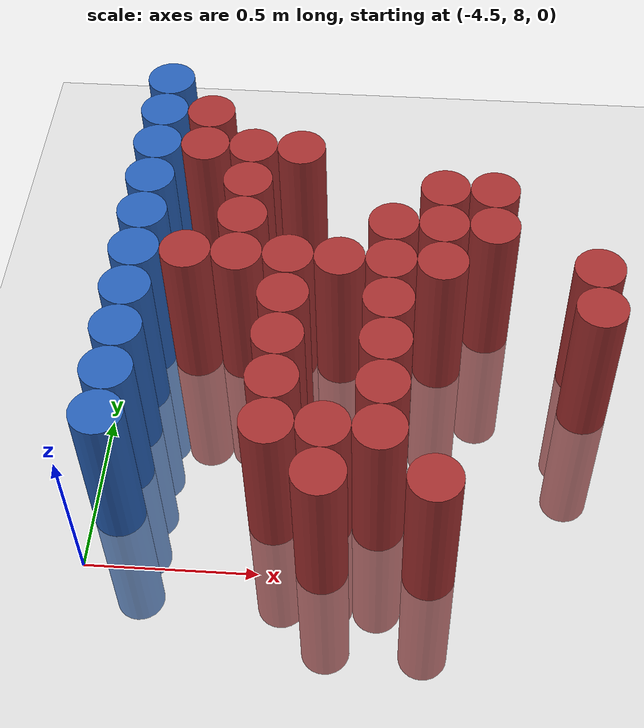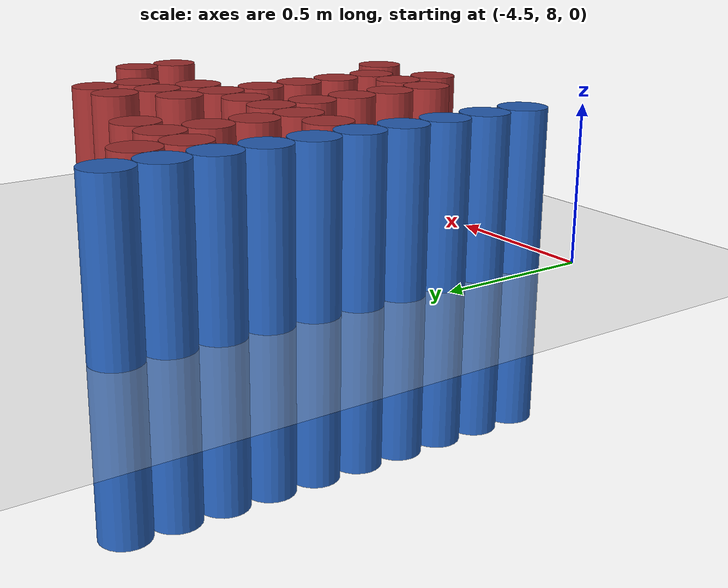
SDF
<sdf version="1.6">
 <world name="default">
  <model name="ground_plane">
   <static>1</static>
   <link name="link">
    <collision name="collision">
     <geometry><plane><normal>0 0 1</normal><size>100 100</size></plane></geometry>
     <surface><friction><ode><mu>100</mu><mu2>50</mu2></ode></friction></surface>
    </collision>
    <visual name="visual">
     <cast_shadows>0</cast_shadows>
     <geometry><plane><normal>0 0 1</normal><size>100 100</size></plane></geometry>
     <material>
      <script><uri>file://media/materials/scripts/gazebo.material</uri><name>Gazebo/Grey</name></script>
     </material>
    </visual>
   </link>
  </model>
  <model name="unit_cylinder_116">
   <static>1</static>
   <pose>-4.425000 8.175000 0.000000 0.000000 0.000000 0.000000</pose>
   <link name="link">
    <inertial>
     <mass>1</mass>
     <inertia><ixx>0.145833</ixx><ixy>0</ixy><ixz>0</ixz><iyy>0.145833</iyy><iyz>0</iyz><izz>0.125</izz></inertia>
    </inertial>
    <collision name="collision">
     <geometry><cylinder><radius>0.075000</radius><length>1</length></cylinder></geometry>
    </collision>
    <visual name="visual">
     <geometry><cylinder><radius>0.075000</radius><length>1</length></cylinder></geometry>
     <material>
      <ambient>0.152000 0.379000 0.720000 1</ambient>
      <diffuse>0.152000 0.379000 0.720000 1</diffuse>
     </material>
     <material>
      <script><name>Gazebo/Grey</name><uri>file://media/materials/scripts/gazebo.material</uri></script>
     </material>
    </visual>
    <sensor name="sensor_contact" type="contact"><contact><collision>collision</collision></contact></sensor>
   </link>
   <plugin filename="gz-sim-touchplugin-system" name="gz::sim::systems::TouchPlugin">
    <target>robot</target>
    <namespace>robot</namespace>
    <time>0.001</time>
    <enabled>true</enabled>
   </plugin>
  </model>
  <model name="unit_cylinder_117">
   <static>1</static>
   <pose>-4.425000 8.325000 0.000000 0.000000 0.000000 0.000000</pose>
   <link name="link">
    <inertial>
     <mass>1</mass>
     <inertia><ixx>0.145833</ixx><ixy>0</ixy><ixz>0</ixz><iyy>0.145833</iyy><iyz>0</iyz><izz>0.125</izz></inertia>
    </inertial>
    <collision name="collision">
     <geometry><cylinder><radius>0.075000</radius><length>1</length></cylinder></geometry>
    </collision>
    <visual name="visual">
     <geometry><cylinder><radius>0.075000</radius><length>1</length></cylinder></geometry>
     <material>
      <ambient>0.152000 0.379000 0.720000 1</ambient>
      <diffuse>0.152000 0.379000 0.720000 1</diffuse>
     </material>
     <material>
      <script><name>Gazebo/Grey</name><uri>file://media/materials/scripts/gazebo.material</uri></script>
     </material>
    </visual>
    <sensor name="sensor_contact" type="contact"><contact><collision>collision</collision></contact></sensor>
   </link>
   <plugin filename="gz-sim-touchplugin-system" name="gz::sim::systems::TouchPlugin">
    <target>robot</target>
    <namespace>robot</namespace>
    <time>0.001</time>
    <enabled>true</enabled>
   </plugin>
  </model>
  <model name="unit_cylinder_118">
   <static>1</static>
   <pose>-4.425000 8.475000 0.000000 0.000000 0.000000 0.000000</pose>
   <link name="link">
    <inertial>
     <mass>1</mass>
     <inertia><ixx>0.145833</ixx><ixy>0</ixy><ixz>0</ixz><iyy>0.145833</iyy><iyz>0</iyz><izz>0.125</izz></inertia>
    </inertial>
    <collision name="collision">
     <geometry><cylinder><radius>0.075000</radius><length>1</length></cylinder></geometry>
    </collision>
    <visual name="visual">
     <geometry><cylinder><radius>0.075000</radius><length>1</length></cylinder></geometry>
     <material>
      <ambient>0.152000 0.379000 0.720000 1</ambient>
      <diffuse>0.152000 0.379000 0.720000 1</diffuse>
     </material>
     <material>
      <script><name>Gazebo/Grey</name><uri>file://media/materials/scripts/gazebo.material</uri></script>
     </material>
    </visual>
    <sensor name="sensor_contact" type="contact"><contact><collision>collision</collision></contact></sensor>
   </link>
   <plugin filename="gz-sim-touchplugin-system" name="gz::sim::systems::TouchPlugin">
    <target>robot</target>
    <namespace>robot</namespace>
    <time>0.001</time>
    <enabled>true</enabled>
   </plugin>
  </model>
  <model name="unit_cylinder_119">
   <static>1</static>
   <pose>-4.425000 8.625000 0.000000 0.000000 0.000000 0.000000</pose>
   <link name="link">
    <inertial>
     <mass>1</mass>
     <inertia><ixx>0.145833</ixx><ixy>0</ixy><ixz>0</ixz><iyy>0.145833</iyy><iyz>0</iyz><izz>0.125</izz></inertia>
    </inertial>
    <collision name="collision">
     <geometry><cylinder><radius>0.075000</radius><length>1</length></cylinder></geometry>
    </collision>
    <visual name="visual">
     <geometry><cylinder><radius>0.075000</radius><length>1</length></cylinder></geometry>
     <material>
      <ambient>0.152000 0.379000 0.720000 1</ambient>
      <diffuse>0.152000 0.379000 0.720000 1</diffuse>
     </material>
     <material>
      <script><name>Gazebo/Grey</name><uri>file://media/materials/scripts/gazebo.material</uri></script>
     </material>
    </visual>
    <sensor name="sensor_contact" type="contact"><contact><collision>collision</collision></contact></sensor>
   </link>
   <plugin filename="gz-sim-touchplugin-system" name="gz::sim::systems::TouchPlugin">
    <target>robot</target>
    <namespace>robot</namespace>
    <time>0.001</time>
    <enabled>true</enabled>
   </plugin>
  </model>
  <model name="unit_cylinder_120">
   <static>1</static>
   <pose>-4.425000 8.775000 0.000000 0.000000 0.000000 0.000000</pose>
   <link name="link">
    <inertial>
     <mass>1</mass>
     <inertia><ixx>0.145833</ixx><ixy>0</ixy><ixz>0</ixz><iyy>0.145833</iyy><iyz>0</iyz><izz>0.125</izz></inertia>
    </inertial>
    <collision name="collision">
     <geometry><cylinder><radius>0.075000</radius><length>1</length></cylinder></geometry>
    </collision>
    <visual name="visual">
     <geometry><cylinder><radius>0.075000</radius><length>1</length></cylinder></geometry>
     <material>
      <ambient>0.152000 0.379000 0.720000 1</ambient>
      <diffuse>0.152000 0.379000 0.720000 1</diffuse>
     </material>
     <material>
      <script><name>Gazebo/Grey</name><uri>file://media/materials/scripts/gazebo.material</uri></script>
     </material>
    </visual>
    <sensor name="sensor_contact" type="contact"><contact><collision>collision</collision></contact></sensor>
   </link>
   <plugin filename="gz-sim-touchplugin-system" name="gz::sim::systems::TouchPlugin">
    <target>robot</target>
    <namespace>robot</namespace>
    <time>0.001</time>
    <enabled>true</enabled>
   </plugin>
  </model>
  <model name="unit_cylinder_121">
   <static>1</static>
   <pose>-4.425000 8.925000 0.000000 0.000000 0.000000 0.000000</pose>
   <link name="link">
    <inertial>
     <mass>1</mass>
     <inertia><ixx>0.145833</ixx><ixy>0</ixy><ixz>0</ixz><iyy>0.145833</iyy><iyz>0</iyz><izz>0.125</izz></inertia>
    </inertial>
    <collision name="collision">
     <geometry><cylinder><radius>0.075000</radius><length>1</length></cylinder></geometry>
    </collision>
    <visual name="visual">
     <geometry><cylinder><radius>0.075000</radius><length>1</length></cylinder></geometry>
     <material>
      <ambient>0.152000 0.379000 0.720000 1</ambient>
      <diffuse>0.152000 0.379000 0.720000 1</diffuse>
     </material>
     <material>
      <script><name>Gazebo/Grey</name><uri>file://media/materials/scripts/gazebo.material</uri></script>
     </material>
    </visual>
    <sensor name="sensor_contact" type="contact"><contact><collision>collision</collision></contact></sensor>
   </link>
   <plugin filename="gz-sim-touchplugin-system" name="gz::sim::systems::TouchPlugin">
    <target>robot</target>
    <namespace>robot</namespace>
    <time>0.001</time>
    <enabled>true</enabled>
   </plugin>
  </model>
  <model name="unit_cylinder_122">
   <static>1</static>
   <pose>-4.425000 9.075000 0.000000 0.000000 0.000000 0.000000</pose>
   <link name="link">
    <inertial>
     <mass>1</mass>
     <inertia><ixx>0.145833</ixx><ixy>0</ixy><ixz>0</ixz><iyy>0.145833</iyy><iyz>0</iyz><izz>0.125</izz></inertia>
    </inertial>
    <collision name="collision">
     <geometry><cylinder><radius>0.075000</radius><length>1</length></cylinder></geometry>
    </collision>
    <visual name="visual">
     <geometry><cylinder><radius>0.075000</radius><length>1</length></cylinder></geometry>
     <material>
      <ambient>0.152000 0.379000 0.720000 1</ambient>
      <diffuse>0.152000 0.379000 0.720000 1</diffuse>
     </material>
     <material>
      <script><name>Gazebo/Grey</name><uri>file://media/materials/scripts/gazebo.material</uri></script>
     </material>
    </visual>
    <sensor name="sensor_contact" type="contact"><contact><collision>collision</collision></contact></sensor>
   </link>
   <plugin filename="gz-sim-touchplugin-system" name="gz::sim::systems::TouchPlugin">
    <target>robot</target>
    <namespace>robot</namespace>
    <time>0.001</time>
    <enabled>true</enabled>
   </plugin>
  </model>
  <model name="unit_cylinder_123">
   <static>1</static>
   <pose>-4.425000 9.225000 0.000000 0.000000 0.000000 0.000000</pose>
   <link name="link">
    <inertial>
     <mass>1</mass>
     <inertia><ixx>0.145833</ixx><ixy>0</ixy><ixz>0</ixz><iyy>0.145833</iyy><iyz>0</iyz><izz>0.125</izz></inertia>
    </inertial>
    <collision name="collision">
     <geometry><cylinder><radius>0.075000</radius><length>1</length></cylinder></geometry>
    </collision>
    <visual name="visual">
     <geometry><cylinder><radius>0.075000</radius><length>1</length></cylinder></geometry>
     <material>
      <ambient>0.152000 0.379000 0.720000 1</ambient>
      <diffuse>0.152000 0.379000 0.720000 1</diffuse>
     </material>
     <material>
      <script><name>Gazebo/Grey</name><uri>file://media/materials/scripts/gazebo.material</uri></script>
     </material>
    </visual>
    <sensor name="sensor_contact" type="contact"><contact><collision>collision</collision></contact></sensor>
   </link>
   <plugin filename="gz-sim-touchplugin-system" name="gz::sim::systems::TouchPlugin">
    <target>robot</target>
    <namespace>robot</namespace>
    <time>0.001</time>
    <enabled>true</enabled>
   </plugin>
  </model>
  <model name="unit_cylinder_124">
   <static>1</static>
   <pose>-4.425000 9.375000 0.000000 0.000000 0.000000 0.000000</pose>
   <link name="link">
    <inertial>
     <mass>1</mass>
     <inertia><ixx>0.145833</ixx><ixy>0</ixy><ixz>0</ixz><iyy>0.145833</iyy><iyz>0</iyz><izz>0.125</izz></inertia>
    </inertial>
    <collision name="collision">
     <geometry><cylinder><radius>0.075000</radius><length>1</length></cylinder></geometry>
    </collision>
    <visual name="visual">
     <geometry><cylinder><radius>0.075000</radius><length>1</length></cylinder></geometry>
     <material>
      <ambient>0.152000 0.379000 0.720000 1</ambient>
      <diffuse>0.152000 0.379000 0.720000 1</diffuse>
     </material>
     <material>
      <script><name>Gazebo/Grey</name><uri>file://media/materials/scripts/gazebo.material</uri></script>
     </material>
    </visual>
    <sensor name="sensor_contact" type="contact"><contact><collision>collision</collision></contact></sensor>
   </link>
   <plugin filename="gz-sim-touchplugin-system" name="gz::sim::systems::TouchPlugin">
    <target>robot</target>
    <namespace>robot</namespace>
    <time>0.001</time>
    <enabled>true</enabled>
   </plugin>
  </model>
  <model name="unit_cylinder_125">
   <static>1</static>
   <pose>-4.425000 9.525000 0.000000 0.000000 0.000000 0.000000</pose>
   <link name="link">
    <inertial>
     <mass>1</mass>
     <inertia><ixx>0.145833</ixx><ixy>0</ixy><ixz>0</ixz><iyy>0.145833</iyy><iyz>0</iyz><izz>0.125</izz></inertia>
    </inertial>
    <collision name="collision">
     <geometry><cylinder><radius>0.075000</radius><length>1</length></cylinder></geometry>
    </collision>
    <visual name="visual">
     <geometry><cylinder><radius>0.075000</radius><length>1</length></cylinder></geometry>
     <material>
      <ambient>0.152000 0.379000 0.720000 1</ambient>
      <diffuse>0.152000 0.379000 0.720000 1</diffuse>
     </material>
     <material>
      <script><name>Gazebo/Grey</name><uri>file://media/materials/scripts/gazebo.material</uri></script>
     </material>
    </visual>
    <sensor name="sensor_contact" type="contact"><contact><collision>collision</collision></contact></sensor>
   </link>
   <plugin filename="gz-sim-touchplugin-system" name="gz::sim::systems::TouchPlugin">
    <target>robot</target>
    <namespace>robot</namespace>
    <time>0.001</time>
    <enabled>true</enabled>
   </plugin>
  </model>
  <model name="unit_cylinder_135">
   <static>1</static>
   <pose>-4.275000 8.775000 0.000000 0.000000 0.000000 0.000000</pose>
   <link name="link">
    <inertial>
     <mass>1</mass>
     <inertia><ixx>0.145833</ixx><ixy>0</ixy><ixz>0</ixz><iyy>0.145833</iyy><iyz>0</iyz><izz>0.125</izz></inertia>
    </inertial>
    <collision name="collision">
     <geometry><cylinder><radius>0.075000</radius><length>1</length></cylinder></geometry>
    </collision>
    <visual name="visual">
     <geometry><cylinder><radius>0.075000</radius><length>1</length></cylinder></geometry>
     <material>
      <ambient>0.648000 0.192000 0.192000 1</ambient>
      <diffuse>0.648000 0.192000 0.192000 1</diffuse>
     </material>
     <material>
      <script><name>Gazebo/Grey</name><uri>file://media/materials/scripts/gazebo.material</uri></script>
     </material>
    </visual>
    <sensor name="sensor_contact" type="contact"><contact><collision>collision</collision></contact></sensor>
   </link>
   <plugin filename="gz-sim-touchplugin-system" name="gz::sim::systems::TouchPlugin">
    <target>robot</target>
    <namespace>robot</namespace>
    <time>0.001</time>
    <enabled>true</enabled>
   </plugin>
  </model>
  <model name="unit_cylinder_136">
   <static>1</static>
   <pose>-4.275000 9.225000 0.000000 0.000000 0.000000 0.000000</pose>
   <link name="link">
    <inertial>
     <mass>1</mass>
     <inertia><ixx>0.145833</ixx><ixy>0</ixy><ixz>0</ixz><iyy>0.145833</iyy><iyz>0</iyz><izz>0.125</izz></inertia>
    </inertial>
    <collision name="collision">
     <geometry><cylinder><radius>0.075000</radius><length>1</length></cylinder></geometry>
    </collision>
    <visual name="visual">
     <geometry><cylinder><radius>0.075000</radius><length>1</length></cylinder></geometry>
     <material>
      <ambient>0.648000 0.192000 0.192000 1</ambient>
      <diffuse>0.648000 0.192000 0.192000 1</diffuse>
     </material>
     <material>
      <script><name>Gazebo/Grey</name><uri>file://media/materials/scripts/gazebo.material</uri></script>
     </material>
    </visual>
    <sensor name="sensor_contact" type="contact"><contact><collision>collision</collision></contact></sensor>
   </link>
   <plugin filename="gz-sim-touchplugin-system" name="gz::sim::systems::TouchPlugin">
    <target>robot</target>
    <namespace>robot</namespace>
    <time>0.001</time>
    <enabled>true</enabled>
   </plugin>
  </model>
  <model name="unit_cylinder_137">
   <static>1</static>
   <pose>-4.275000 9.375000 0.000000 0.000000 0.000000 0.000000</pose>
   <link name="link">
    <inertial>
     <mass>1</mass>
     <inertia><ixx>0.145833</ixx><ixy>0</ixy><ixz>0</ixz><iyy>0.145833</iyy><iyz>0</iyz><izz>0.125</izz></inertia>
    </inertial>
    <collision name="collision">
     <geometry><cylinder><radius>0.075000</radius><length>1</length></cylinder></geometry>
    </collision>
    <visual name="visual">
     <geometry><cylinder><radius>0.075000</radius><length>1</length></cylinder></geometry>
     <material>
      <ambient>0.648000 0.192000 0.192000 1</ambient>
      <diffuse>0.648000 0.192000 0.192000 1</diffuse>
     </material>
     <material>
      <script><name>Gazebo/Grey</name><uri>file://media/materials/scripts/gazebo.material</uri></script>
     </material>
    </visual>
    <sensor name="sensor_contact" type="contact"><contact><collision>collision</collision></contact></sensor>
   </link>
   <plugin filename="gz-sim-touchplugin-system" name="gz::sim::systems::TouchPlugin">
    <target>robot</target>
    <namespace>robot</namespace>
    <time>0.001</time>
    <enabled>true</enabled>
   </plugin>
  </model>
  <model name="unit_cylinder_146">
   <static>1</static>
   <pose>-4.125000 8.775000 0.000000 0.000000 0.000000 0.000000</pose>
   <link name="link">
    <inertial>
     <mass>1</mass>
     <inertia><ixx>0.145833</ixx><ixy>0</ixy><ixz>0</ixz><iyy>0.145833</iyy><iyz>0</iyz><izz>0.125</izz></inertia>
    </inertial>
    <collision name="collision">
     <geometry><cylinder><radius>0.075000</radius><length>1</length></cylinder></geometry>
    </collision>
    <visual name="visual">
     <geometry><cylinder><radius>0.075000</radius><length>1</length></cylinder></geometry>
     <material>
      <ambient>0.648000 0.192000 0.192000 1</ambient>
      <diffuse>0.648000 0.192000 0.192000 1</diffuse>
     </material>
     <material>
      <script><name>Gazebo/Grey</name><uri>file://media/materials/scripts/gazebo.material</uri></script>
     </material>
    </visual>
    <sensor name="sensor_contact" type="contact"><contact><collision>collision</collision></contact></sensor>
   </link>
   <plugin filename="gz-sim-touchplugin-system" name="gz::sim::systems::TouchPlugin">
    <target>robot</target>
    <namespace>robot</namespace>
    <time>0.001</time>
    <enabled>true</enabled>
   </plugin>
  </model>
  <model name="unit_cylinder_147">
   <static>1</static>
   <pose>-4.125000 8.925000 0.000000 0.000000 0.000000 0.000000</pose>
   <link name="link">
    <inertial>
     <mass>1</mass>
     <inertia><ixx>0.145833</ixx><ixy>0</ixy><ixz>0</ixz><iyy>0.145833</iyy><iyz>0</iyz><izz>0.125</izz></inertia>
    </inertial>
    <collision name="collision">
     <geometry><cylinder><radius>0.075000</radius><length>1</length></cylinder></geometry>
    </collision>
    <visual name="visual">
     <geometry><cylinder><radius>0.075000</radius><length>1</length></cylinder></geometry>
     <material>
      <ambient>0.648000 0.192000 0.192000 1</ambient>
      <diffuse>0.648000 0.192000 0.192000 1</diffuse>
     </material>
     <material>
      <script><name>Gazebo/Grey</name><uri>file://media/materials/scripts/gazebo.material</uri></script>
     </material>
    </visual>
    <sensor name="sensor_contact" type="contact"><contact><collision>collision</collision></contact></sensor>
   </link>
   <plugin filename="gz-sim-touchplugin-system" name="gz::sim::systems::TouchPlugin">
    <target>robot</target>
    <namespace>robot</namespace>
    <time>0.001</time>
    <enabled>true</enabled>
   </plugin>
  </model>
  <model name="unit_cylinder_148">
   <static>1</static>
   <pose>-4.125000 9.075000 0.000000 0.000000 0.000000 0.000000</pose>
   <link name="link">
    <inertial>
     <mass>1</mass>
     <inertia><ixx>0.145833</ixx><ixy>0</ixy><ixz>0</ixz><iyy>0.145833</iyy><iyz>0</iyz><izz>0.125</izz></inertia>
    </inertial>
    <collision name="collision">
     <geometry><cylinder><radius>0.075000</radius><length>1</length></cylinder></geometry>
    </collision>
    <visual name="visual">
     <geometry><cylinder><radius>0.075000</radius><length>1</length></cylinder></geometry>
     <material>
      <ambient>0.648000 0.192000 0.192000 1</ambient>
      <diffuse>0.648000 0.192000 0.192000 1</diffuse>
     </material>
     <material>
      <script><name>Gazebo/Grey</name><uri>file://media/materials/scripts/gazebo.material</uri></script>
     </material>
    </visual>
    <sensor name="sensor_contact" type="contact"><contact><collision>collision</collision></contact></sensor>
   </link>
   <plugin filename="gz-sim-touchplugin-system" name="gz::sim::systems::TouchPlugin">
    <target>robot</target>
    <namespace>robot</namespace>
    <time>0.001</time>
    <enabled>true</enabled>
   </plugin>
  </model>
  <model name="unit_cylinder_149">
   <static>1</static>
   <pose>-4.125000 9.225000 0.000000 0.000000 0.000000 0.000000</pose>
   <link name="link">
    <inertial>
     <mass>1</mass>
     <inertia><ixx>0.145833</ixx><ixy>0</ixy><ixz>0</ixz><iyy>0.145833</iyy><iyz>0</iyz><izz>0.125</izz></inertia>
    </inertial>
    <collision name="collision">
     <geometry><cylinder><radius>0.075000</radius><length>1</length></cylinder></geometry>
    </collision>
    <visual name="visual">
     <geometry><cylinder><radius>0.075000</radius><length>1</length></cylinder></geometry>
     <material>
      <ambient>0.648000 0.192000 0.192000 1</ambient>
      <diffuse>0.648000 0.192000 0.192000 1</diffuse>
     </material>
     <material>
      <script><name>Gazebo/Grey</name><uri>file://media/materials/scripts/gazebo.material</uri></script>
     </material>
    </visual>
    <sensor name="sensor_contact" type="contact"><contact><collision>collision</collision></contact></sensor>
   </link>
   <plugin filename="gz-sim-touchplugin-system" name="gz::sim::systems::TouchPlugin">
    <target>robot</target>
    <namespace>robot</namespace>
    <time>0.001</time>
    <enabled>true</enabled>
   </plugin>
  </model>
  <model name="unit_cylinder_154">
   <static>1</static>
   <pose>-3.975000 8.175000 0.000000 0.000000 0.000000 0.000000</pose>
   <link name="link">
    <inertial>
     <mass>1</mass>
     <inertia><ixx>0.145833</ixx><ixy>0</ixy><ixz>0</ixz><iyy>0.145833</iyy><iyz>0</iyz><izz>0.125</izz></inertia>
    </inertial>
    <collision name="collision">
     <geometry><cylinder><radius>0.075000</radius><length>1</length></cylinder></geometry>
    </collision>
    <visual name="visual">
     <geometry><cylinder><radius>0.075000</radius><length>1</length></cylinder></geometry>
     <material>
      <ambient>0.648000 0.192000 0.192000 1</ambient>
      <diffuse>0.648000 0.192000 0.192000 1</diffuse>
     </material>
     <material>
      <script><name>Gazebo/Grey</name><uri>file://media/materials/scripts/gazebo.material</uri></script>
     </material>
    </visual>
    <sensor name="sensor_contact" type="contact"><contact><collision>collision</collision></contact></sensor>
   </link>
   <plugin filename="gz-sim-touchplugin-system" name="gz::sim::systems::TouchPlugin">
    <target>robot</target>
    <namespace>robot</namespace>
    <time>0.001</time>
    <enabled>true</enabled>
   </plugin>
  </model>
  <model name="unit_cylinder_155">
   <static>1</static>
   <pose>-3.975000 8.325000 0.000000 0.000000 0.000000 0.000000</pose>
   <link name="link">
    <inertial>
     <mass>1</mass>
     <inertia><ixx>0.145833</ixx><ixy>0</ixy><ixz>0</ixz><iyy>0.145833</iyy><iyz>0</iyz><izz>0.125</izz></inertia>
    </inertial>
    <collision name="collision">
     <geometry><cylinder><radius>0.075000</radius><length>1</length></cylinder></geometry>
    </collision>
    <visual name="visual">
     <geometry><cylinder><radius>0.075000</radius><length>1</length></cylinder></geometry>
     <material>
      <ambient>0.648000 0.192000 0.192000 1</ambient>
      <diffuse>0.648000 0.192000 0.192000 1</diffuse>
     </material>
     <material>
      <script><name>Gazebo/Grey</name><uri>file://media/materials/scripts/gazebo.material</uri></script>
     </material>
    </visual>
    <sensor name="sensor_contact" type="contact"><contact><collision>collision</collision></contact></sensor>
   </link>
   <plugin filename="gz-sim-touchplugin-system" name="gz::sim::systems::TouchPlugin">
    <target>robot</target>
    <namespace>robot</namespace>
    <time>0.001</time>
    <enabled>true</enabled>
   </plugin>
  </model>
  <model name="unit_cylinder_156">
   <static>1</static>
   <pose>-3.975000 8.475000 0.000000 0.000000 0.000000 0.000000</pose>
   <link name="link">
    <inertial>
     <mass>1</mass>
     <inertia><ixx>0.145833</ixx><ixy>0</ixy><ixz>0</ixz><iyy>0.145833</iyy><iyz>0</iyz><izz>0.125</izz></inertia>
    </inertial>
    <collision name="collision">
     <geometry><cylinder><radius>0.075000</radius><length>1</length></cylinder></geometry>
    </collision>
    <visual name="visual">
     <geometry><cylinder><radius>0.075000</radius><length>1</length></cylinder></geometry>
     <material>
      <ambient>0.648000 0.192000 0.192000 1</ambient>
      <diffuse>0.648000 0.192000 0.192000 1</diffuse>
     </material>
     <material>
      <script><name>Gazebo/Grey</name><uri>file://media/materials/scripts/gazebo.material</uri></script>
     </material>
    </visual>
    <sensor name="sensor_contact" type="contact"><contact><collision>collision</collision></contact></sensor>
   </link>
   <plugin filename="gz-sim-touchplugin-system" name="gz::sim::systems::TouchPlugin">
    <target>robot</target>
    <namespace>robot</namespace>
    <time>0.001</time>
    <enabled>true</enabled>
   </plugin>
  </model>
  <model name="unit_cylinder_157">
   <static>1</static>
   <pose>-3.975000 8.625000 0.000000 0.000000 0.000000 0.000000</pose>
   <link name="link">
    <inertial>
     <mass>1</mass>
     <inertia><ixx>0.145833</ixx><ixy>0</ixy><ixz>0</ixz><iyy>0.145833</iyy><iyz>0</iyz><izz>0.125</izz></inertia>
    </inertial>
    <collision name="collision">
     <geometry><cylinder><radius>0.075000</radius><length>1</length></cylinder></geometry>
    </collision>
    <visual name="visual">
     <geometry><cylinder><radius>0.075000</radius><length>1</length></cylinder></geometry>
     <material>
      <ambient>0.648000 0.192000 0.192000 1</ambient>
      <diffuse>0.648000 0.192000 0.192000 1</diffuse>
     </material>
     <material>
      <script><name>Gazebo/Grey</name><uri>file://media/materials/scripts/gazebo.material</uri></script>
     </material>
    </visual>
    <sensor name="sensor_contact" type="contact"><contact><collision>collision</collision></contact></sensor>
   </link>
   <plugin filename="gz-sim-touchplugin-system" name="gz::sim::systems::TouchPlugin">
    <target>robot</target>
    <namespace>robot</namespace>
    <time>0.001</time>
    <enabled>true</enabled>
   </plugin>
  </model>
  <model name="unit_cylinder_158">
   <static>1</static>
   <pose>-3.975000 8.775000 0.000000 0.000000 0.000000 0.000000</pose>
   <link name="link">
    <inertial>
     <mass>1</mass>
     <inertia><ixx>0.145833</ixx><ixy>0</ixy><ixz>0</ixz><iyy>0.145833</iyy><iyz>0</iyz><izz>0.125</izz></inertia>
    </inertial>
    <collision name="collision">
     <geometry><cylinder><radius>0.075000</radius><length>1</length></cylinder></geometry>
    </collision>
    <visual name="visual">
     <geometry><cylinder><radius>0.075000</radius><length>1</length></cylinder></geometry>
     <material>
      <ambient>0.648000 0.192000 0.192000 1</ambient>
      <diffuse>0.648000 0.192000 0.192000 1</diffuse>
     </material>
     <material>
      <script><name>Gazebo/Grey</name><uri>file://media/materials/scripts/gazebo.material</uri></script>
     </material>
    </visual>
    <sensor name="sensor_contact" type="contact"><contact><collision>collision</collision></contact></sensor>
   </link>
   <plugin filename="gz-sim-touchplugin-system" name="gz::sim::systems::TouchPlugin">
    <target>robot</target>
    <namespace>robot</namespace>
    <time>0.001</time>
    <enabled>true</enabled>
   </plugin>
  </model>
  <model name="unit_cylinder_159">
   <static>1</static>
   <pose>-3.975000 9.225000 0.000000 0.000000 0.000000 0.000000</pose>
   <link name="link">
    <inertial>
     <mass>1</mass>
     <inertia><ixx>0.145833</ixx><ixy>0</ixy><ixz>0</ixz><iyy>0.145833</iyy><iyz>0</iyz><izz>0.125</izz></inertia>
    </inertial>
    <collision name="collision">
     <geometry><cylinder><radius>0.075000</radius><length>1</length></cylinder></geometry>
    </collision>
    <visual name="visual">
     <geometry><cylinder><radius>0.075000</radius><length>1</length></cylinder></geometry>
     <material>
      <ambient>0.648000 0.192000 0.192000 1</ambient>
      <diffuse>0.648000 0.192000 0.192000 1</diffuse>
     </material>
     <material>
      <script><name>Gazebo/Grey</name><uri>file://media/materials/scripts/gazebo.material</uri></script>
     </material>
    </visual>
    <sensor name="sensor_contact" type="contact"><contact><collision>collision</collision></contact></sensor>
   </link>
   <plugin filename="gz-sim-touchplugin-system" name="gz::sim::systems::TouchPlugin">
    <target>robot</target>
    <namespace>robot</namespace>
    <time>0.001</time>
    <enabled>true</enabled>
   </plugin>
  </model>
  <model name="unit_cylinder_160">
   <static>1</static>
   <pose>-3.825000 8.025000 0.000000 0.000000 0.000000 0.000000</pose>
   <link name="link">
    <inertial>
     <mass>1</mass>
     <inertia><ixx>0.145833</ixx><ixy>0</ixy><ixz>0</ixz><iyy>0.145833</iyy><iyz>0</iyz><izz>0.125</izz></inertia>
    </inertial>
    <collision name="collision">
     <geometry><cylinder><radius>0.075000</radius><length>1</length></cylinder></geometry>
    </collision>
    <visual name="visual">
     <geometry><cylinder><radius>0.075000</radius><length>1</length></cylinder></geometry>
     <material>
      <ambient>0.648000 0.192000 0.192000 1</ambient>
      <diffuse>0.648000 0.192000 0.192000 1</diffuse>
     </material>
     <material>
      <script><name>Gazebo/Grey</name><uri>file://media/materials/scripts/gazebo.material</uri></script>
     </material>
    </visual>
    <sensor name="sensor_contact" type="contact"><contact><collision>collision</collision></contact></sensor>
   </link>
   <plugin filename="gz-sim-touchplugin-system" name="gz::sim::systems::TouchPlugin">
    <target>robot</target>
    <namespace>robot</namespace>
    <time>0.001</time>
    <enabled>true</enabled>
   </plugin>
  </model>
  <model name="unit_cylinder_161">
   <static>1</static>
   <pose>-3.825000 8.175000 0.000000 0.000000 0.000000 0.000000</pose>
   <link name="link">
    <inertial>
     <mass>1</mass>
     <inertia><ixx>0.145833</ixx><ixy>0</ixy><ixz>0</ixz><iyy>0.145833</iyy><iyz>0</iyz><izz>0.125</izz></inertia>
    </inertial>
    <collision name="collision">
     <geometry><cylinder><radius>0.075000</radius><length>1</length></cylinder></geometry>
    </collision>
    <visual name="visual">
     <geometry><cylinder><radius>0.075000</radius><length>1</length></cylinder></geometry>
     <material>
      <ambient>0.648000 0.192000 0.192000 1</ambient>
      <diffuse>0.648000 0.192000 0.192000 1</diffuse>
     </material>
     <material>
      <script><name>Gazebo/Grey</name><uri>file://media/materials/scripts/gazebo.material</uri></script>
     </material>
    </visual>
    <sensor name="sensor_contact" type="contact"><contact><collision>collision</collision></contact></sensor>
   </link>
   <plugin filename="gz-sim-touchplugin-system" name="gz::sim::systems::TouchPlugin">
    <target>robot</target>
    <namespace>robot</namespace>
    <time>0.001</time>
    <enabled>true</enabled>
   </plugin>
  </model>
  <model name="unit_cylinder_162">
   <static>1</static>
   <pose>-3.825000 8.775000 0.000000 0.000000 0.000000 0.000000</pose>
   <link name="link">
    <inertial>
     <mass>1</mass>
     <inertia><ixx>0.145833</ixx><ixy>0</ixy><ixz>0</ixz><iyy>0.145833</iyy><iyz>0</iyz><izz>0.125</izz></inertia>
    </inertial>
    <collision name="collision">
     <geometry><cylinder><radius>0.075000</radius><length>1</length></cylinder></geometry>
    </collision>
    <visual name="visual">
     <geometry><cylinder><radius>0.075000</radius><length>1</length></cylinder></geometry>
     <material>
      <ambient>0.648000 0.192000 0.192000 1</ambient>
      <diffuse>0.648000 0.192000 0.192000 1</diffuse>
     </material>
     <material>
      <script><name>Gazebo/Grey</name><uri>file://media/materials/scripts/gazebo.material</uri></script>
     </material>
    </visual>
    <sensor name="sensor_contact" type="contact"><contact><collision>collision</collision></contact></sensor>
   </link>
   <plugin filename="gz-sim-touchplugin-system" name="gz::sim::systems::TouchPlugin">
    <target>robot</target>
    <namespace>robot</namespace>
    <time>0.001</time>
    <enabled>true</enabled>
   </plugin>
  </model>
  <model name="unit_cylinder_166">
   <static>1</static>
   <pose>-3.675000 8.175000 0.000000 0.000000 0.000000 0.000000</pose>
   <link name="link">
    <inertial>
     <mass>1</mass>
     <inertia><ixx>0.145833</ixx><ixy>0</ixy><ixz>0</ixz><iyy>0.145833</iyy><iyz>0</iyz><izz>0.125</izz></inertia>
    </inertial>
    <collision name="collision">
     <geometry><cylinder><radius>0.075000</radius><length>1</length></cylinder></geometry>
    </collision>
    <visual name="visual">
     <geometry><cylinder><radius>0.075000</radius><length>1</length></cylinder></geometry>
     <material>
      <ambient>0.648000 0.192000 0.192000 1</ambient>
      <diffuse>0.648000 0.192000 0.192000 1</diffuse>
     </material>
     <material>
      <script><name>Gazebo/Grey</name><uri>file://media/materials/scripts/gazebo.material</uri></script>
     </material>
    </visual>
    <sensor name="sensor_contact" type="contact"><contact><collision>collision</collision></contact></sensor>
   </link>
   <plugin filename="gz-sim-touchplugin-system" name="gz::sim::systems::TouchPlugin">
    <target>robot</target>
    <namespace>robot</namespace>
    <time>0.001</time>
    <enabled>true</enabled>
   </plugin>
  </model>
  <model name="unit_cylinder_167">
   <static>1</static>
   <pose>-3.675000 8.325000 0.000000 0.000000 0.000000 0.000000</pose>
   <link name="link">
    <inertial>
     <mass>1</mass>
     <inertia><ixx>0.145833</ixx><ixy>0</ixy><ixz>0</ixz><iyy>0.145833</iyy><iyz>0</iyz><izz>0.125</izz></inertia>
    </inertial>
    <collision name="collision">
     <geometry><cylinder><radius>0.075000</radius><length>1</length></cylinder></geometry>
    </collision>
    <visual name="visual">
     <geometry><cylinder><radius>0.075000</radius><length>1</length></cylinder></geometry>
     <material>
      <ambient>0.648000 0.192000 0.192000 1</ambient>
      <diffuse>0.648000 0.192000 0.192000 1</diffuse>
     </material>
     <material>
      <script><name>Gazebo/Grey</name><uri>file://media/materials/scripts/gazebo.material</uri></script>
     </material>
    </visual>
    <sensor name="sensor_contact" type="contact"><contact><collision>collision</collision></contact></sensor>
   </link>
   <plugin filename="gz-sim-touchplugin-system" name="gz::sim::systems::TouchPlugin">
    <target>robot</target>
    <namespace>robot</namespace>
    <time>0.001</time>
    <enabled>true</enabled>
   </plugin>
  </model>
  <model name="unit_cylinder_168">
   <static>1</static>
   <pose>-3.675000 8.475000 0.000000 0.000000 0.000000 0.000000</pose>
   <link name="link">
    <inertial>
     <mass>1</mass>
     <inertia><ixx>0.145833</ixx><ixy>0</ixy><ixz>0</ixz><iyy>0.145833</iyy><iyz>0</iyz><izz>0.125</izz></inertia>
    </inertial>
    <collision name="collision">
     <geometry><cylinder><radius>0.075000</radius><length>1</length></cylinder></geometry>
    </collision>
    <visual name="visual">
     <geometry><cylinder><radius>0.075000</radius><length>1</length></cylinder></geometry>
     <material>
      <ambient>0.648000 0.192000 0.192000 1</ambient>
      <diffuse>0.648000 0.192000 0.192000 1</diffuse>
     </material>
     <material>
      <script><name>Gazebo/Grey</name><uri>file://media/materials/scripts/gazebo.material</uri></script>
     </material>
    </visual>
    <sensor name="sensor_contact" type="contact"><contact><collision>collision</collision></contact></sensor>
   </link>
   <plugin filename="gz-sim-touchplugin-system" name="gz::sim::systems::TouchPlugin">
    <target>robot</target>
    <namespace>robot</namespace>
    <time>0.001</time>
    <enabled>true</enabled>
   </plugin>
  </model>
  <model name="unit_cylinder_169">
   <static>1</static>
   <pose>-3.675000 8.625000 0.000000 0.000000 0.000000 0.000000</pose>
   <link name="link">
    <inertial>
     <mass>1</mass>
     <inertia><ixx>0.145833</ixx><ixy>0</ixy><ixz>0</ixz><iyy>0.145833</iyy><iyz>0</iyz><izz>0.125</izz></inertia>
    </inertial>
    <collision name="collision">
     <geometry><cylinder><radius>0.075000</radius><length>1</length></cylinder></geometry>
    </collision>
    <visual name="visual">
     <geometry><cylinder><radius>0.075000</radius><length>1</length></cylinder></geometry>
     <material>
      <ambient>0.648000 0.192000 0.192000 1</ambient>
      <diffuse>0.648000 0.192000 0.192000 1</diffuse>
     </material>
     <material>
      <script><name>Gazebo/Grey</name><uri>file://media/materials/scripts/gazebo.material</uri></script>
     </material>
    </visual>
    <sensor name="sensor_contact" type="contact"><contact><collision>collision</collision></contact></sensor>
   </link>
   <plugin filename="gz-sim-touchplugin-system" name="gz::sim::systems::TouchPlugin">
    <target>robot</target>
    <namespace>robot</namespace>
    <time>0.001</time>
    <enabled>true</enabled>
   </plugin>
  </model>
  <model name="unit_cylinder_170">
   <static>1</static>
   <pose>-3.675000 8.775000 0.000000 0.000000 0.000000 0.000000</pose>
   <link name="link">
    <inertial>
     <mass>1</mass>
     <inertia><ixx>0.145833</ixx><ixy>0</ixy><ixz>0</ixz><iyy>0.145833</iyy><iyz>0</iyz><izz>0.125</izz></inertia>
    </inertial>
    <collision name="collision">
     <geometry><cylinder><radius>0.075000</radius><length>1</length></cylinder></geometry>
    </collision>
    <visual name="visual">
     <geometry><cylinder><radius>0.075000</radius><length>1</length></cylinder></geometry>
     <material>
      <ambient>0.648000 0.192000 0.192000 1</ambient>
      <diffuse>0.648000 0.192000 0.192000 1</diffuse>
     </material>
     <material>
      <script><name>Gazebo/Grey</name><uri>file://media/materials/scripts/gazebo.material</uri></script>
     </material>
    </visual>
    <sensor name="sensor_contact" type="contact"><contact><collision>collision</collision></contact></sensor>
   </link>
   <plugin filename="gz-sim-touchplugin-system" name="gz::sim::systems::TouchPlugin">
    <target>robot</target>
    <namespace>robot</namespace>
    <time>0.001</time>
    <enabled>true</enabled>
   </plugin>
  </model>
  <model name="unit_cylinder_171">
   <static>1</static>
   <pose>-3.675000 8.925000 0.000000 0.000000 0.000000 0.000000</pose>
   <link name="link">
    <inertial>
     <mass>1</mass>
     <inertia><ixx>0.145833</ixx><ixy>0</ixy><ixz>0</ixz><iyy>0.145833</iyy><iyz>0</iyz><izz>0.125</izz></inertia>
    </inertial>
    <collision name="collision">
     <geometry><cylinder><radius>0.075000</radius><length>1</length></cylinder></geometry>
    </collision>
    <visual name="visual">
     <geometry><cylinder><radius>0.075000</radius><length>1</length></cylinder></geometry>
     <material>
      <ambient>0.648000 0.192000 0.192000 1</ambient>
      <diffuse>0.648000 0.192000 0.192000 1</diffuse>
     </material>
     <material>
      <script><name>Gazebo/Grey</name><uri>file://media/materials/scripts/gazebo.material</uri></script>
     </material>
    </visual>
    <sensor name="sensor_contact" type="contact"><contact><collision>collision</collision></contact></sensor>
   </link>
   <plugin filename="gz-sim-touchplugin-system" name="gz::sim::systems::TouchPlugin">
    <target>robot</target>
    <namespace>robot</namespace>
    <time>0.001</time>
    <enabled>true</enabled>
   </plugin>
  </model>
  <model name="unit_cylinder_178">
   <static>1</static>
   <pose>-3.525000 8.025000 0.000000 0.000000 0.000000 0.000000</pose>
   <link name="link">
    <inertial>
     <mass>1</mass>
     <inertia><ixx>0.145833</ixx><ixy>0</ixy><ixz>0</ixz><iyy>0.145833</iyy><iyz>0</iyz><izz>0.125</izz></inertia>
    </inertial>
    <collision name="collision">
     <geometry><cylinder><radius>0.075000</radius><length>1</length></cylinder></geometry>
    </collision>
    <visual name="visual">
     <geometry><cylinder><radius>0.075000</radius><length>1</length></cylinder></geometry>
     <material>
      <ambient>0.648000 0.192000 0.192000 1</ambient>
      <diffuse>0.648000 0.192000 0.192000 1</diffuse>
     </material>
     <material>
      <script><name>Gazebo/Grey</name><uri>file://media/materials/scripts/gazebo.material</uri></script>
     </material>
    </visual>
    <sensor name="sensor_contact" type="contact"><contact><collision>collision</collision></contact></sensor>
   </link>
   <plugin filename="gz-sim-touchplugin-system" name="gz::sim::systems::TouchPlugin">
    <target>robot</target>
    <namespace>robot</namespace>
    <time>0.001</time>
    <enabled>true</enabled>
   </plugin>
  </model>
  <model name="unit_cylinder_179">
   <static>1</static>
   <pose>-3.525000 8.775000 0.000000 0.000000 0.000000 0.000000</pose>
   <link name="link">
    <inertial>
     <mass>1</mass>
     <inertia><ixx>0.145833</ixx><ixy>0</ixy><ixz>0</ixz><iyy>0.145833</iyy><iyz>0</iyz><izz>0.125</izz></inertia>
    </inertial>
    <collision name="collision">
     <geometry><cylinder><radius>0.075000</radius><length>1</length></cylinder></geometry>
    </collision>
    <visual name="visual">
     <geometry><cylinder><radius>0.075000</radius><length>1</length></cylinder></geometry>
     <material>
      <ambient>0.648000 0.192000 0.192000 1</ambient>
      <diffuse>0.648000 0.192000 0.192000 1</diffuse>
     </material>
     <material>
      <script><name>Gazebo/Grey</name><uri>file://media/materials/scripts/gazebo.material</uri></script>
     </material>
    </visual>
    <sensor name="sensor_contact" type="contact"><contact><collision>collision</collision></contact></sensor>
   </link>
   <plugin filename="gz-sim-touchplugin-system" name="gz::sim::systems::TouchPlugin">
    <target>robot</target>
    <namespace>robot</namespace>
    <time>0.001</time>
    <enabled>true</enabled>
   </plugin>
  </model>
  <model name="unit_cylinder_180">
   <static>1</static>
   <pose>-3.525000 8.925000 0.000000 0.000000 0.000000 0.000000</pose>
   <link name="link">
    <inertial>
     <mass>1</mass>
     <inertia><ixx>0.145833</ixx><ixy>0</ixy><ixz>0</ixz><iyy>0.145833</iyy><iyz>0</iyz><izz>0.125</izz></inertia>
    </inertial>
    <collision name="collision">
     <geometry><cylinder><radius>0.075000</radius><length>1</length></cylinder></geometry>
    </collision>
    <visual name="visual">
     <geometry><cylinder><radius>0.075000</radius><length>1</length></cylinder></geometry>
     <material>
      <ambient>0.648000 0.192000 0.192000 1</ambient>
      <diffuse>0.648000 0.192000 0.192000 1</diffuse>
     </material>
     <material>
      <script><name>Gazebo/Grey</name><uri>file://media/materials/scripts/gazebo.material</uri></script>
     </material>
    </visual>
    <sensor name="sensor_contact" type="contact"><contact><collision>collision</collision></contact></sensor>
   </link>
   <plugin filename="gz-sim-touchplugin-system" name="gz::sim::systems::TouchPlugin">
    <target>robot</target>
    <namespace>robot</namespace>
    <time>0.001</time>
    <enabled>true</enabled>
   </plugin>
  </model>
  <model name="unit_cylinder_181">
   <static>1</static>
   <pose>-3.525000 9.075000 0.000000 0.000000 0.000000 0.000000</pose>
   <link name="link">
    <inertial>
     <mass>1</mass>
     <inertia><ixx>0.145833</ixx><ixy>0</ixy><ixz>0</ixz><iyy>0.145833</iyy><iyz>0</iyz><izz>0.125</izz></inertia>
    </inertial>
    <collision name="collision">
     <geometry><cylinder><radius>0.075000</radius><length>1</length></cylinder></geometry>
    </collision>
    <visual name="visual">
     <geometry><cylinder><radius>0.075000</radius><length>1</length></cylinder></geometry>
     <material>
      <ambient>0.648000 0.192000 0.192000 1</ambient>
      <diffuse>0.648000 0.192000 0.192000 1</diffuse>
     </material>
     <material>
      <script><name>Gazebo/Grey</name><uri>file://media/materials/scripts/gazebo.material</uri></script>
     </material>
    </visual>
    <sensor name="sensor_contact" type="contact"><contact><collision>collision</collision></contact></sensor>
   </link>
   <plugin filename="gz-sim-touchplugin-system" name="gz::sim::systems::TouchPlugin">
    <target>robot</target>
    <namespace>robot</namespace>
    <time>0.001</time>
    <enabled>true</enabled>
   </plugin>
  </model>
  <model name="unit_cylinder_188">
   <static>1</static>
   <pose>-3.375000 8.925000 0.000000 0.000000 0.000000 0.000000</pose>
   <link name="link">
    <inertial>
     <mass>1</mass>
     <inertia><ixx>0.145833</ixx><ixy>0</ixy><ixz>0</ixz><iyy>0.145833</iyy><iyz>0</iyz><izz>0.125</izz></inertia>
    </inertial>
    <collision name="collision">
     <geometry><cylinder><radius>0.075000</radius><length>1</length></cylinder></geometry>
    </collision>
    <visual name="visual">
     <geometry><cylinder><radius>0.075000</radius><length>1</length></cylinder></geometry>
     <material>
      <ambient>0.648000 0.192000 0.192000 1</ambient>
      <diffuse>0.648000 0.192000 0.192000 1</diffuse>
     </material>
     <material>
      <script><name>Gazebo/Grey</name><uri>file://media/materials/scripts/gazebo.material</uri></script>
     </material>
    </visual>
    <sensor name="sensor_contact" type="contact"><contact><collision>collision</collision></contact></sensor>
   </link>
   <plugin filename="gz-sim-touchplugin-system" name="gz::sim::systems::TouchPlugin">
    <target>robot</target>
    <namespace>robot</namespace>
    <time>0.001</time>
    <enabled>true</enabled>
   </plugin>
  </model>
  <model name="unit_cylinder_189">
   <static>1</static>
   <pose>-3.375000 9.075000 0.000000 0.000000 0.000000 0.000000</pose>
   <link name="link">
    <inertial>
     <mass>1</mass>
     <inertia><ixx>0.145833</ixx><ixy>0</ixy><ixz>0</ixz><iyy>0.145833</iyy><iyz>0</iyz><izz>0.125</izz></inertia>
    </inertial>
    <collision name="collision">
     <geometry><cylinder><radius>0.075000</radius><length>1</length></cylinder></geometry>
    </collision>
    <visual name="visual">
     <geometry><cylinder><radius>0.075000</radius><length>1</length></cylinder></geometry>
     <material>
      <ambient>0.648000 0.192000 0.192000 1</ambient>
      <diffuse>0.648000 0.192000 0.192000 1</diffuse>
     </material>
     <material>
      <script><name>Gazebo/Grey</name><uri>file://media/materials/scripts/gazebo.material</uri></script>
     </material>
    </visual>
    <sensor name="sensor_contact" type="contact"><contact><collision>collision</collision></contact></sensor>
   </link>
   <plugin filename="gz-sim-touchplugin-system" name="gz::sim::systems::TouchPlugin">
    <target>robot</target>
    <namespace>robot</namespace>
    <time>0.001</time>
    <enabled>true</enabled>
   </plugin>
  </model>
  <model name="unit_cylinder_205">
   <static>1</static>
   <pose>-3.075000 8.625000 0.000000 0.000000 0.000000 0.000000</pose>
   <link name="link">
    <inertial>
     <mass>1</mass>
     <inertia><ixx>0.145833</ixx><ixy>0</ixy><ixz>0</ixz><iyy>0.145833</iyy><iyz>0</iyz><izz>0.125</izz></inertia>
    </inertial>
    <collision name="collision">
     <geometry><cylinder><radius>0.075000</radius><length>1</length></cylinder></geometry>
    </collision>
    <visual name="visual">
     <geometry><cylinder><radius>0.075000</radius><length>1</length></cylinder></geometry>
     <material>
      <ambient>0.648000 0.192000 0.192000 1</ambient>
      <diffuse>0.648000 0.192000 0.192000 1</diffuse>
     </material>
     <material>
      <script><name>Gazebo/Grey</name><uri>file://media/materials/scripts/gazebo.material</uri></script>
     </material>
    </visual>
    <sensor name="sensor_contact" type="contact"><contact><collision>collision</collision></contact></sensor>
   </link>
   <plugin filename="gz-sim-touchplugin-system" name="gz::sim::systems::TouchPlugin">
    <target>robot</target>
    <namespace>robot</namespace>
    <time>0.001</time>
    <enabled>true</enabled>
   </plugin>
  </model>
  <model name="unit_cylinder_206">
   <static>1</static>
   <pose>-3.075000 8.775000 0.000000 0.000000 0.000000 0.000000</pose>
   <link name="link">
    <inertial>
     <mass>1</mass>
     <inertia><ixx>0.145833</ixx><ixy>0</ixy><ixz>0</ixz><iyy>0.145833</iyy><iyz>0</iyz><izz>0.125</izz></inertia>
    </inertial>
    <collision name="collision">
     <geometry><cylinder><radius>0.075000</radius><length>1</length></cylinder></geometry>
    </collision>
    <visual name="visual">
     <geometry><cylinder><radius>0.075000</radius><length>1</length></cylinder></geometry>
     <material>
      <ambient>0.648000 0.192000 0.192000 1</ambient>
      <diffuse>0.648000 0.192000 0.192000 1</diffuse>
     </material>
     <material>
      <script><name>Gazebo/Grey</name><uri>file://media/materials/scripts/gazebo.material</uri></script>
     </material>
    </visual>
    <sensor name="sensor_contact" type="contact"><contact><collision>collision</collision></contact></sensor>
   </link>
   <plugin filename="gz-sim-touchplugin-system" name="gz::sim::systems::TouchPlugin">
    <target>robot</target>
    <namespace>robot</namespace>
    <time>0.001</time>
    <enabled>true</enabled>
   </plugin>
  </model>
 </world>
</sdf>
